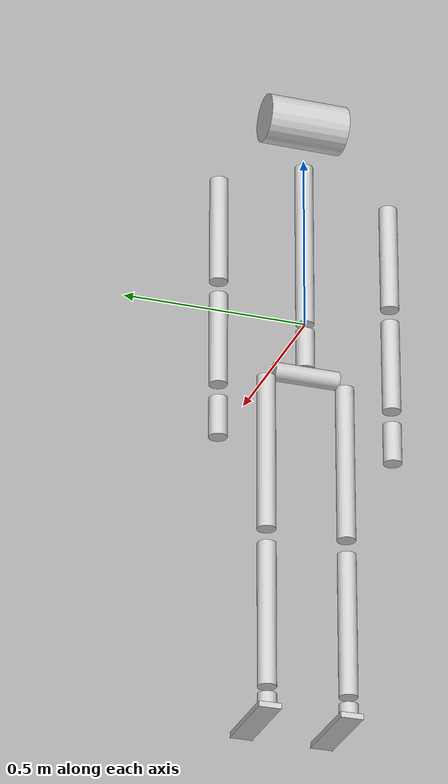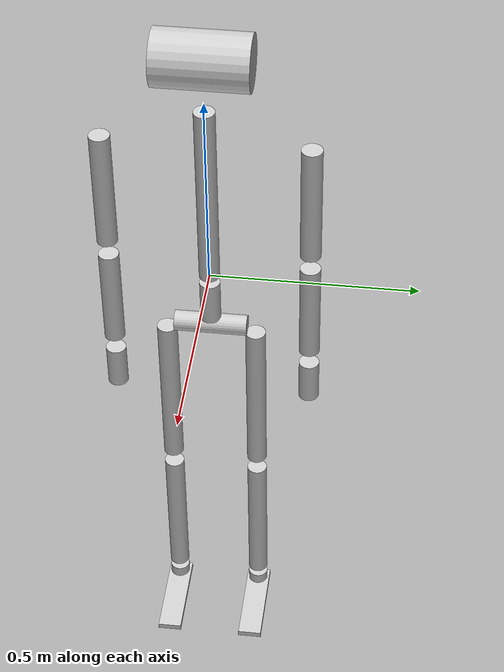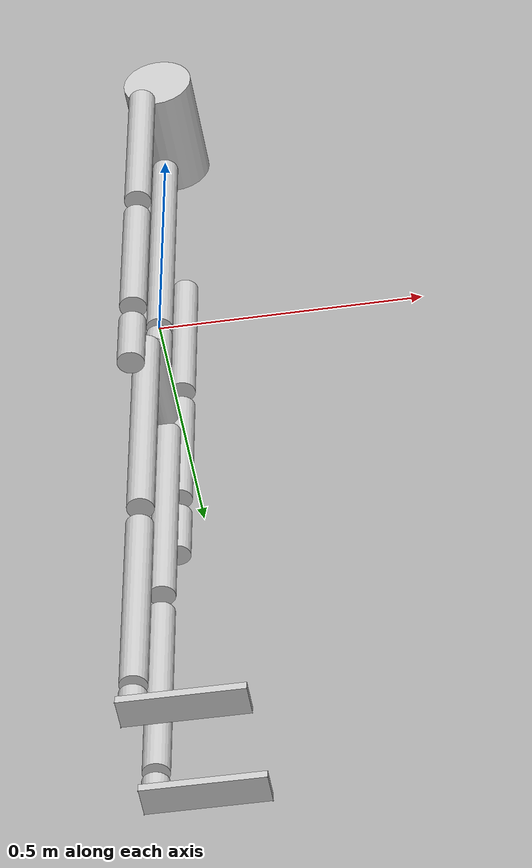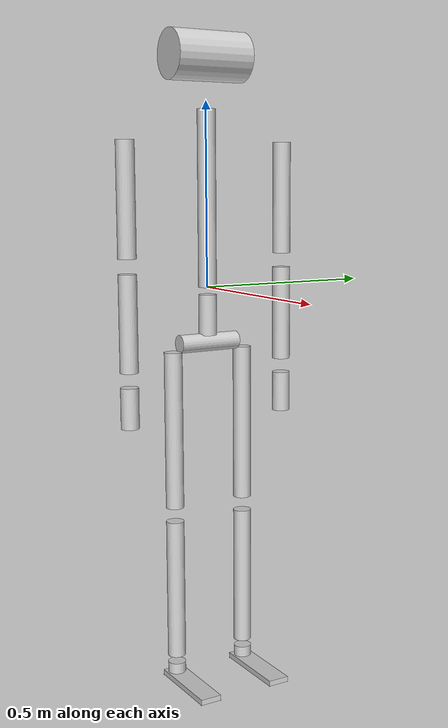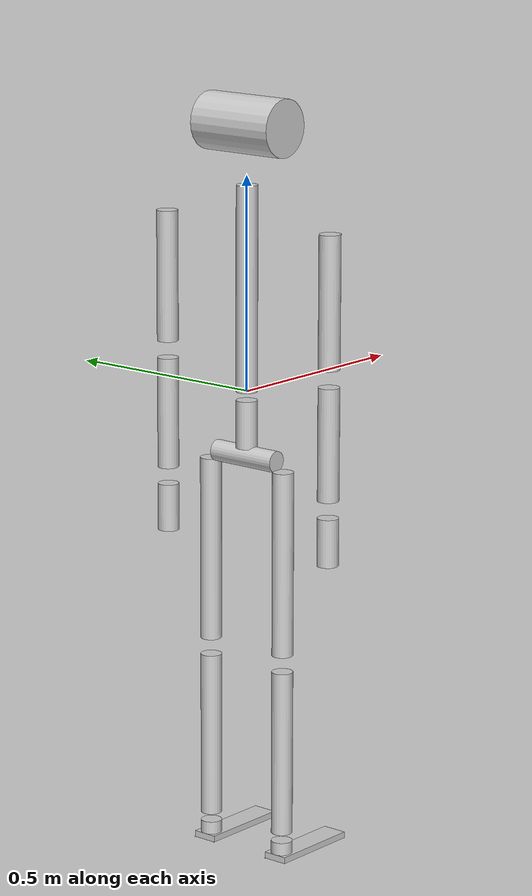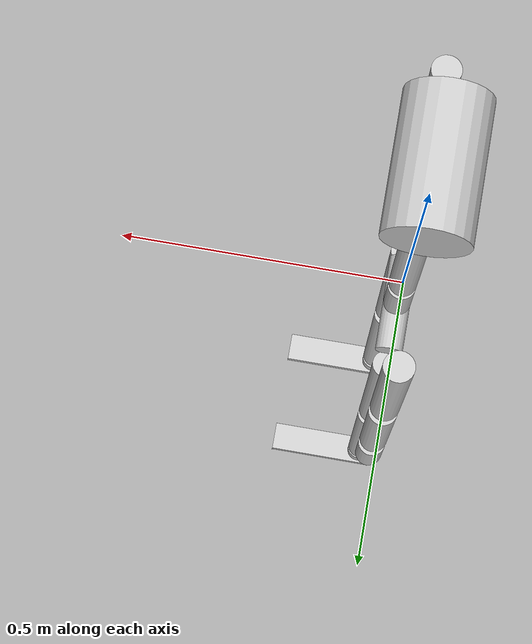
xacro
<?xml version="1.0"?>
<robot xmlns:sensor="http://playerstage.sourceforge.net/gazebo/xmlschema/#sensor"
       xmlns:controller="http://playerstage.sourceforge.net/gazebo/xmlschema/#controller"
       xmlns:interface="http://playerstage.sourceforge.net/gazebo/xmlschema/#interface"
       name="atlas">

  <include filename="$(find atlas_description)/urdf/atlas_properties.xacro" />
  <include filename="$(find atlas_description)/urdf/atlas_visualsandcollision.xacro" />
  <include filename="$(find atlas_description)/urdf/atlas_structure.urdf.xacro" />
 <include filename="$(find atlas_description)/urdf/atlas_controllers_pre_fuerte.xacro" />

</robot>

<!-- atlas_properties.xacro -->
<!--
    A simple visualization of the Atlas's kinematic structure as cylinders
-->
<robot xmlns:xacro="http://ros.org/wiki/xacro">

<xacro:property name="height" value="1.78562" />

<!-- visual properties (only affects visualization) -->
<xacro:property name="cylinder_radius" value="0.025"/>
 <xacro:property name="buffer" value="0.04"/>  <!-- shows a gap between the links -->

<!-- masses (kg) -->
	<!-- mass of cables,skin,fluid etc. -->
<xacro:property name="mass_misc" value="28.4" />
	<!-- redistribyte misc mass equally across legs, arms and torso-->
<xacro:property name="mass_misc_div_3" value="9.467" />

<xacro:property name="mass_pelvis_legs" value="30.7" />
<xacro:property name="mass_torso_back" value= "9.8" />
<xacro:property name="mass_arms_hands" value= "10.2" />
<xacro:property name="mass_head_neck" value="1.8" />
<xacro:property name="mass_power_plant" value="22.0" />
<xacro:property name="mass_total" value="102.9" />
<xacro:property name="mass_pelvis" value="5.7" />
<xacro:property name="mass_foot" value="2.0"/> <!-- made up a value for the foot mass -->
<xacro:property name="mass_wrist" value="2.0"/> <!-- made up a value for the foot mass -->

<!-- proportions -->
<xacro:property name="l_neck_head" value="0.134" />
<xacro:property name="l_head" value="0.124" />
<xacro:property name="l_neck" value="0.01" />
<xacro:property name="l_torso" value="0.268" />
<xacro:property name="l_upper_arm" value="0.195" />
<xacro:property name="l_lower_arm" value="0.170" />
<xacro:property name="l_hand" value="0.0854" />
<xacro:property name="l_thigh" value="0.268" />
<xacro:property name="l_shin" value="0.244 " />
<xacro:property name="l_ankle" value="0.0243" />
<xacro:property name="l_foot" value="0.0976" />
<xacro:property name="l_pelvis" value="0.0854" />

<!-- guessing the width of stuff -->
<xacro:property name="w_head" value="0.075" />
<xacro:property name="w_arm" value="0.05" />
<xacro:property name="w_leg" value="0.06" />
<xacro:property name="w_pelvis" value="0.122" />
<xacro:property name="w_foot" value="0.06" />

<!-- offsets (meters)  -->
<xacro:property name="o_back_shoulder_y" value="0.135" />
<xacro:property name="o_back_shoulder_z" value="0.232" />
<xacro:property name="o_back_hip_y" value="0.061" />
<xacro:property name="o_back_hip_z" value="0.0854" />

<!-- constants -->
<xacro:property name="pi" value="3.1415926535897931"/>
<xacro:property name="pi_2" value="1.5707963267948966"/>
<xacro:property name="pi_180" value="0.01745329251"/>

<!-- Joint limits (radians)  -->
<!-- adduction (min roll): motions towards the midline of the body-->
<!-- abduction (max roll): motions away from the midline of the body-->
<!-- adduction/abduction is analog to roll, rotation about x axis -->
<xacro:property name="hip_adduction_limit" value="-20"/>
<xacro:property name="hip_abduction_limit" value="20"/>
<xacro:property name="back_adduction_limit" value="-40"/>
<xacro:property name="back_abduction_limit" value="40"/>
<xacro:property name="shoulder_adduction_limit" value="0"/>
<xacro:property name="shoulder_abduction_limit" value="115"/>
<xacro:property name="wrist_adduction_limit" value="-30"/>
<xacro:property name="wrist_abduction_limit" value="60"/>

<!-- Flexion (min pitch): decreases angle between two parts -->
<!-- Extension (min pitch): increases angle between two parts -->
<!-- Flexion/Extension is analog to pitch, rotation about y axis -->
<xacro:property name="hip_flexion_limit" value="-100"/>
<xacro:property name="hip_extension_limit" value="20"/>
<xacro:property name="knee_flexion_limit" value="0"/>
<xacro:property name="knee_extension_limit" value="135"/>
<xacro:property name="ankle_flexion_limit" value="-40"/>
<xacro:property name="ankle_extension_limit" value="40"/>

<xacro:property name="back_flexion_limit" value="-35"/>
<xacro:property name="back_extension_limit" value="25"/>
<xacro:property name="neck_flexion_limit" value="-45"/>
<xacro:property name="neck_extension_limit" value="45"/>
<!-- The Boston Dynamics slide says flexion is -90 and extension is 50. But the other way makes more sense -->
<xacro:property name="shoulder_flexion_limit" value="-90"/>
<xacro:property name="shoulder_extension_limit" value="50"/>
<xacro:property name="elbow_flexion_limit" value="-135"/>
<xacro:property name="elbow_extension_limit" value="0"/>

<!-- Internal/External rotation, (analog to yaw). e.g; internal rotation on hip causes the toe to point towards the mid point of the body -->
<xacro:property name="hip_int_rotation_limit" value="-10"/>
<xacro:property name="hip_ext_rotation_limit" value="70"/>
<xacro:property name="back_int_rotation_limit" value="-45"/>
<xacro:property name="back_ext_rotation_limit" value="45"/>
<xacro:property name="neck_int_rotation_limit" value="-90"/>
<xacro:property name="neck_ext_rotation_limit" value="90"/>
<xacro:property name="shoulder_int_rotation_limit" value="-40"/>
<xacro:property name="shoulder_ext_rotation_limit" value="100"/>
<xacro:property name="wrist_int_rotation_limit" value="-85"/>
<xacro:property name="wrist_ext_rotation_limit" value="85"/>

<!-- Torque Limits -->
<xacro:property name="hip_adduction_abduction_torque_limit" value="180"/>
<xacro:property name="hip_flexion_extension_torque_limit" value="260"/>
<xacro:property name="hip_int_ext_rotation_torque_limit" value="110"/>
<xacro:property name="knee_flexion_extension_torque_limit" value="220"/>
<xacro:property name="ankle_flexion_extension_torque_limit" value="220"/>
<xacro:property name="back_adduction_abduction_torque_limit" value="100"/>
<xacro:property name="back_flexion_extension_torque_limit" value="180"/>
<xacro:property name="back_int_ext_rotation_torque_limit" value="110"/>
<xacro:property name="neck_flexion_extension_torque_limit" value="25"/>
<xacro:property name="neck_int_ext_rotation_torque_limit" value="54"/>
<xacro:property name="shoulder_adduction_abduction_torque_limit" value="110"/>
<xacro:property name="shoulder_flexion_extension_torque_limit" value="110"/>
<xacro:property name="shoulder_int_ext_rotation_torque_limit" value="80"/>
<xacro:property name="elbow_flexion_extension_torque_limit" value="100"/>
<xacro:property name="wrist_adduction_abduction_torque_limit" value="30"/>
<xacro:property name="wrist_int_ext_rotation_torque_limit" value="15"/>

<!-- Velocity Limit -->
<xacro:property name="joint_velocity_limit" value="3"/>

<!-- Damping and friction in joints -->
<!-- Maybe we need one for each type of joint -->
<xacro:property name="joint_damping" value="1"/>
<xacro:property name="joint_friction" value="10"/>

<!-- Macros for inertial properties of simple geometries -->

 <xacro:macro name="insert_inertial_cylinder" params="mass r l">
      <inertial>
         <mass value="${mass}" />
          <inertia ixx="${(mass/12)*((3*r*r) + (l*l))}" ixy="0.0" ixz="0.0"
                   iyy="${(mass/12)*((3*r*r) + (l*l))}" iyz="0.0"
                   izz="${(mass/2)*(r*r)}" />
      </inertial>
</xacro:macro>

 <xacro:macro name="insert_inertial_cuboid" params="mass l_x l_y l_z">
      <inertial>
         <mass value="${mass}" />
          <inertia ixx="${(mass/12)*((l_y*l_y) + (l_z*l_z))}" ixy="0.0" ixz="0.0"
                   iyy="${(mass/12)*((l_x*l_x) + (l_z*l_z))}" iyz="0.0"
                   izz="${(mass/12)*((l_x*l_x) + (l_y*l_y))}" />
      </inertial>
</xacro:macro>

 <xacro:macro name="insert_small_inertial"  params="">
    <inertial>
      <origin xyz="0 0 0" rpy="0 0 0"/>
      <mass value="0.01"/>
      <inertia ixx="0.0001"  ixy="0.0"  ixz="0.0" iyy="0.0001" iyz="0.0" izz="0.0001" />
    </inertial>
</xacro:macro>

 <xacro:macro name="insert_zero_inertial"  params="">
  <!-- Gazebo does not like zero inertial properties (Use small inertial instead) -->
    <inertial>
      <origin xyz="0 0 0" rpy="0 0 0"/>
      <mass value="0.00"/>
      <inertia ixx="0.0000"  ixy="0.0"  ixz="0.0" iyy="0.0000" iyz="0.0" izz="0.0000" />
    </inertial>
</xacro:macro>

 <xacro:macro name="insert_inertial_cylinder2" params="mass mass4inertiatensor r l">
   <!-- Useful when specifying inertia of multiDOF joints if they are subdivided into individual links, shoulder yaw,pitch,roll-->
      <inertial>
         <mass value="${mass}" />
          <inertia ixx="${(mass4inertiatensor/12)*((3*r*r) + (l*l))}" ixy="0.0" ixz="0.0"
                   iyy="${(mass4inertiatensor/12)*((3*r*r) + (l*l))}" iyz="0.0"
                   izz="${(mass4inertiatensor/2)*(r*r)}" />
        </inertial>
</xacro:macro>

</robot>

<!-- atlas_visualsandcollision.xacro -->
<!--
    A simple visualization of the Atlas's kinematic structure as cylinders
-->
<robot xmlns:xacro="http://ros.org/wiki/xacro">
  <material name="LightGrey">
    <color rgba="0.8 0.8 0.8 1.0"/>
  </material>
  <material name="Grey">
      <color rgba="0.6 0.6 0.6 1.0"/>
  </material>
  <material name="DarkGrey">
      <color rgba="0.3 0.3 0.3 1.0"/>
  </material>
  <material name="Black">
      <color rgba="0.1 0.1 0.1 1.0"/>
  </material>

    <xacro:macro name="insert_visualization_torso" params="">
        <visual>
            <origin xyz="0.0 0.0 ${(l_torso/2)*height}" rpy="0 0 0"/>
            <geometry>
                <cylinder radius="${cylinder_radius}" length="${l_torso*height}"/>
            </geometry>
            <material name="LightGrey"/>
        </visual>
       <collision>
              <origin xyz="0.0 0.0 ${(l_torso/2)*height}" rpy="0 0 0"/>
            <geometry>
                <box size=" ${0.1*height} ${0.28*height} ${0.268*height}"/>
            </geometry>
        </collision>
    </xacro:macro>

    <xacro:macro name="insert_visualization_head" params="">
        <visual>
            <origin xyz="0 0 ${(l_neck_head/2 + l_neck)*height}" rpy="${pi_2} 0 0"/>
            <geometry>
		<cylinder radius="${(w_head/2)*height}" length="${l_head*height}"/>
            </geometry>
            <material name="LightGrey"/>
        </visual>
       <collision>
           <origin xyz="0 0 ${(l_neck_head/2 + l_neck)*height}" rpy="1.57 0 0"/>
            <geometry>
                <cylinder radius="${(w_head/2)*height}" length="${l_neck_head*height}"/>
            </geometry>
        </collision>
    </xacro:macro>

    <xacro:macro name="insert_visualization_upper_arm" params="side">
        <visual>
            <origin xyz="0 0 -${(l_upper_arm/2)*height}" rpy="0 0 0"/>
            <geometry>
                <cylinder radius="${cylinder_radius}" length="${l_upper_arm*height-buffer}"/>
            </geometry>
            <material name="LightGrey"/>
        </visual>
       <collision>
            <origin xyz="0 0 -${(l_upper_arm/2)*height}" rpy="0 0 0"/>
            <geometry>
                <cylinder radius="${cylinder_radius}" length="${l_upper_arm*height}"/>
            </geometry>
        </collision>
    </xacro:macro>

    <xacro:macro name="insert_visualization_lower_arm" params="side">
        <visual>
            <origin xyz="0 0 -${(l_lower_arm/2)*height}"  rpy="0 0 0"/>
            <geometry>
               <cylinder radius="${cylinder_radius}" length="${l_lower_arm*height-buffer}"/>
            </geometry>
            <material name="LightGrey"/>
        </visual>
       <collision>
            <origin xyz="0 0 -${(l_lower_arm/2)*height}"  rpy="0 0 0"/>
            <geometry>
                <cylinder radius="${cylinder_radius}" length="${l_lower_arm*height}"/>
            </geometry>
        </collision>
    </xacro:macro>

    <xacro:macro name="insert_visualization_hand" params="side">
 	<visual>
            <origin xyz="0 0 -${(l_hand/2)*height}"  rpy="0 0 0"/>
            <geometry>
               <cylinder radius="${cylinder_radius}" length="${l_hand*height-buffer}"/>
            </geometry>
            <material name="LightGrey"/>
        </visual>
       <collision>
             <origin xyz="0 0 -${(l_hand/2)*height}"  rpy="0 0 0"/>
            <geometry>
                <cylinder radius="${cylinder_radius}" length="${l_hand*height}"/>
            </geometry>
        </collision>
    </xacro:macro>

    <xacro:macro name="insert_visualization_pelvis1" params="">
        <visual>
            <origin xyz="0 0 -${(l_pelvis/2)*height}" rpy="0 0 0"/>
            <geometry>
               <cylinder radius="${cylinder_radius}" length="${l_pelvis*height-buffer}"/>
            </geometry>
            <material name="LightGrey"/>
        </visual>
       <collision>
            <origin xyz="0 0 -${(l_pelvis/2)*height}" rpy="0 0 0"/>
            <geometry>
                <cylinder radius="${cylinder_radius}" length="${l_pelvis*height}"/>
            </geometry>
        </collision>
    </xacro:macro>

    <xacro:macro name="insert_visualization_pelvis2" params="">
        <visual>
            <origin xyz="0 0 0" rpy="${pi_2} 0 0"/>
            <geometry>
               <cylinder radius="${cylinder_radius}" length="${w_pelvis*height-buffer}"/>
            </geometry>
            <material name="LightGrey"/>
        </visual>
       <collision>
            <origin xyz="0 0 0" rpy="${pi_2} 0 0"/>
            <geometry>
                <cylinder radius="${cylinder_radius}" length="${w_pelvis*height}"/>
            </geometry>
        </collision>
    </xacro:macro>

    <xacro:macro name="insert_visualization_thigh" params="side">
        <visual>
            <origin xyz="0.0 0.0 -${(l_thigh/2)*height}" rpy="0 0 0"/>
            <geometry>
                <cylinder radius="${cylinder_radius}" length="${l_thigh*height-buffer}"/>
            </geometry>
            <material name="LightGrey"/>
        </visual>
       <collision>
              <origin xyz="0.0 0.0 -${(l_thigh/2)*height}" rpy="0 0 0"/>
            <geometry>
                <cylinder radius="${cylinder_radius}" length="${l_thigh*height}"/>
            </geometry>
        </collision>
    </xacro:macro>

    <xacro:macro name="insert_visualization_shin" params="side">
        <visual>
            <origin xyz="0 0 -${(l_shin/2)*height}" rpy="0 0 0"/>
            <geometry>
               <cylinder radius="${cylinder_radius}" length="${l_shin*height-buffer}"/>
            </geometry>
            <material name="LightGrey"/>
        </visual>
       <collision>
            <origin xyz="0 0 -${(l_shin/2)*height}" rpy="0 0 0"/>
            <geometry>
                <cylinder radius="${cylinder_radius}" length="${l_shin*height}"/>
            </geometry>
        </collision>
    </xacro:macro>

    <xacro:macro name="insert_visualization_ankle" params="side">
        <visual>
            <origin xyz="0 0 -${(l_ankle/2)*height}" rpy="0 0 0"/>
            <geometry>
               <cylinder radius="${cylinder_radius}" length="${l_ankle*height}"/>
            </geometry>
            <material name="LightGrey"/>
        </visual>
       <collision>
            <origin xyz="0 0 -${(l_ankle/2)*height}" rpy="0 0 0"/>
            <geometry>
                <cylinder radius="${cylinder_radius}" length="${l_ankle*height}"/>
            </geometry>
        </collision>
    </xacro:macro>

    <xacro:macro name="insert_visualization_foot" params="side">
        <visual>
            <origin xyz="${(l_foot/2)*height} 0 0.0075" rpy="0 0 0"/>
            <geometry>
                <box size="${l_foot*height+0.05} ${w_foot} 0.015"/>
            </geometry>
            <material name="LightGrey"/>
        </visual>
       <collision>
           <origin xyz="${(l_foot/2)*height} 0 0.0075" rpy="0 0 0"/>
            <geometry>
                <box size="${l_foot*height+0.05} ${w_foot} 0.015"/>
            </geometry>
        </collision>
    </xacro:macro>

    <xacro:macro name="insert_visualization_foot_contact_point" params="side">
        <visual>
            <origin xyz="0 0 0" rpy="0 0 0"/>
            <geometry>
                <sphere radius="0.001"/>
            </geometry>
            <material name="LightGrey"/>
        </visual>
       <collision>
           <origin xyz="0 0 0" rpy="0 0 0"/>
            <geometry>
                <sphere radius="0.0001"/> <!-- ~=point contact -->
            </geometry>
        </collision>
    </xacro:macro>

</robot>

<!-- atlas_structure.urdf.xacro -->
<robot xmlns:xacro="http://ros.org/wiki/xacro">

<!-- dummy first link, directly connects with back joint -->
  <link name="base_link">
    <xacro:insert_small_inertial />
  </link>

  <link name="Back">
   <xacro:insert_inertial_cylinder mass="${0.1*mass_torso_back}" r="${w_pelvis*height}" l="${0.1*height}"/>
  </link>

  <link name="Pelvis-link1">
   <xacro:insert_inertial_cuboid mass="${0.5*mass_pelvis}" l_x="${0.1*height}" l_y="${w_pelvis*height}" l_z="${l_pelvis*height}"/>
   <xacro:insert_visualization_pelvis1/>
  </link>

  <link name="Pelvis-link2">
   <xacro:insert_inertial_cuboid mass="${0.5*mass_pelvis}" l_x="${0.1*height}" l_y="${l_pelvis*height}" l_z="${w_pelvis*height}"/>
   <xacro:insert_visualization_pelvis2/>
  </link>

  <link name="BackYaw_link">
   <xacro:insert_inertial_cylinder mass="${0.1*mass_torso_back}" r="${o_back_shoulder_y*height}" l="${0.1*height}"/>
  </link>

  <link name="BackPitch_link">
  <xacro:insert_inertial_cuboid mass="${0.1*mass_torso_back}" l_x="${0.1*height}" l_y="${0.28*height}" l_z="${0.268*height}"/>
  </link>

  <link name="BackRoll_link">
  <xacro:insert_inertial_cuboid mass="${0.1*mass_torso_back}" l_x="${0.1*height}" l_y="${0.28*height}" l_z="${0.268*height}"/>
  </link>

 <link name="Torso" >
   <!-- assuming the rotational inertia of the torso is of a cuboid -->
  <xacro:insert_inertial_cuboid mass="${0.6*mass_torso_back+mass_misc_div_3}" l_x="${0.1*height}" l_y="${0.28*height}" l_z="${0.268*height}"/>
   <xacro:insert_visualization_torso/>
  </link>

  <link name="NeckYaw_link">
  <xacro:insert_inertial_cylinder mass="${0.5*mass_head_neck}" r="${(w_head/2)*height}" l="${l_neck_head*height}"/>
  </link>

  <link name="NeckPitch_link">
  <xacro:insert_inertial_cylinder mass="${0.5*mass_head_neck}" r="${(w_head/2)*height}" l="${l_neck_head*height}"/>
  <xacro:insert_visualization_head/>
  </link>

  <!-- Arms, 2/3 of the weight is in the shoulders and upper arm. 1/3 is in the lower arm -->
  <xacro:macro name="arm_links" params="side reflect">

  <link name = "${side}ShoulderYaw_link">
  <xacro:insert_inertial_cylinder mass="${((mass_arms_hands+mass_misc_div_3)/9)}"
 r="${(w_arm/2)*height}" l="${l_upper_arm*height}"/>
  </link>
  <link name = "${side}ShoulderPitch_link">
  <xacro:insert_inertial_cylinder mass="${((mass_arms_hands+mass_misc_div_3)/9)}"  r="${(w_arm/2)*height}" l="${l_upper_arm*height}"/>
   </link>
  <link name = "${side}ShoulderRoll_link">
  <xacro:insert_inertial_cylinder mass="${((mass_arms_hands+mass_misc_div_3)/9)}" r="${(w_arm/2)*height}" l="${l_upper_arm*height}"/>
    <xacro:insert_visualization_upper_arm side="${side}"/>
  </link>

  <link name = "${side}ElbowPitch_link">
  <xacro:insert_inertial_cylinder mass="${((mass_arms_hands+mass_misc_div_3)/6)}" r="${(w_arm/2)*height}" l="${l_lower_arm*height}"/>
    <xacro:insert_visualization_lower_arm side="${side}"/>
  </link>

  <link name = "${side}WristYaw_link">
    <xacro:insert_inertial_cylinder2 mass="${mass_wrist*0.5}" mass4inertiatensor="${mass_wrist}" r="${(w_arm/2)*height}" l="${l_hand*height}"/>
  </link>

  <link name = "${side}WristRoll_link">
   <xacro:insert_inertial_cylinder2 mass="${mass_wrist*0.5}" mass4inertiatensor="${mass_wrist}" r="${(w_arm/2)*height}" l="${l_hand*height}"/>
   <xacro:insert_visualization_hand side="${side}"/>
  </link>

  </xacro:macro>

  <xacro:arm_links side="L" reflect="-1"/>
  <xacro:arm_links side="R" reflect="1"/>

<!-- Legs, 2/3 of the weight is in the hips and thigh and other 1/3 is in the lower leg  -->
<xacro:macro name="leg_links" params="side reflect">
  <link name="${side}HipYaw_link" >
   <xacro:insert_inertial_cylinder mass="${((mass_pelvis_legs-(2*mass_foot)-mass_pelvis+mass_misc_div_3)/9)}" r="${(w_leg/2)*height}" l="${l_thigh*height}"/>
  </link>

  <link name="${side}HipPitch_link">
   <xacro:insert_inertial_cylinder mass="${((mass_pelvis_legs-(2*mass_foot)-mass_pelvis+mass_misc_div_3)/9)}" r="${(w_leg/2)*height}" l="${l_thigh*height}"/>
  </link>

  <link name="${side}HipRoll_link">
   <xacro:insert_inertial_cylinder mass="${((mass_pelvis_legs-(2*mass_foot)-mass_pelvis+mass_misc_div_3)/9)}" r="${(w_leg/2)*height}" l="${l_thigh*height}"/>
    <xacro:insert_visualization_thigh side="${side}"/>
  </link>

  <link name="${side}KneePitch_link">
     <xacro:insert_inertial_cylinder mass="${((mass_pelvis_legs-(2*mass_foot)-mass_pelvis+mass_misc_div_3)/6)}" r="${(w_leg/2)*height}" l="${l_shin*height}"/>
    <xacro:insert_visualization_shin side="${side}"/>
  </link>

  <link name="${side}AnklePitch_link">
    <xacro:insert_inertial_cylinder mass="${1}" r="${cylinder_radius}" l="${l_ankle*height}"/>
    <xacro:insert_visualization_ankle side="${side}"/>
  </link>

  <link name="${side}Ankle">
    <xacro:insert_inertial_cylinder mass="${1}" r="${cylinder_radius}" l="${l_ankle*height}"/>
  </link>

  <link name="${side}Foot">
    <xacro:insert_inertial_cuboid mass="${mass_foot}" l_x="${l_foot*height}" l_y="0.06" l_z="0.015"/>
    <xacro:insert_visualization_foot side="${side}"/>
  </link>

  <link name="${side}FootToeIn_link" drakeIgnore="True">
    <xacro:insert_small_inertial />
    <xacro:insert_visualization_foot_contact_point side="${side}"/>
  </link>

  <link name="${side}FootToeOut_link" drakeIgnore="True">
    <xacro:insert_small_inertial />
    <xacro:insert_visualization_foot_contact_point side="${side}"/>
  </link>

  <link name="${side}FootHeelIn_link" drakeIgnore="True">
    <xacro:insert_small_inertial />
    <xacro:insert_visualization_foot_contact_point side="${side}"/>
  </link>

  <link name="${side}FootHeelOut_link" drakeIgnore="True">
    <xacro:insert_small_inertial />
    <xacro:insert_visualization_foot_contact_point side="${side}"/>
  </link>

 </xacro:macro>

  <xacro:leg_links side="L" reflect="-1"/>
  <xacro:leg_links side="R" reflect="1"/>

<!--   Joints following below -->

<xacro:macro name="joint_trans" params="joint_name">
  <transmission type="SimpleTransmission" name="${joint_name}_trans">
    <actuator name="${joint_name}Torque" />
    <joint name="${joint_name}" />
    <mechanicalReduction>1</mechanicalReduction>
  </transmission>
</xacro:macro>

  <joint name="base_joint" type="fixed">
    <child link="Back"/>
    <parent link="base_link"/>
    <origin xyz="0 0 0" rpy="0 0 0" />
  </joint>

  <joint name="BackYaw" type="revolute">
    <parent link="Back"/>
    <child link="BackYaw_link"/>
    <origin xyz="0 0 0.0" rpy="0 0 0" />
    <axis xyz="0 0 1" />
    <limit velocity="${joint_velocity_limit}" effort="${back_int_ext_rotation_torque_limit}" lower="${back_int_rotation_limit*pi_180}" upper="${back_ext_rotation_limit*pi_180}" />
     <dynamics damping="${joint_damping}" friction = "${joint_friction}"/>
  </joint>
  <xacro:joint_trans joint_name="BackYaw"/>

  <joint name="BackPitch" type="revolute">
    <parent link="BackYaw_link"/>
    <child link="BackPitch_link"/>
    <origin xyz="0 0 0" rpy="0 0 0" />
    <axis xyz="0 1 0" />
    <limit velocity="${joint_velocity_limit}" effort="${back_flexion_extension_torque_limit}" lower="${back_flexion_limit*pi_180}" upper="${back_extension_limit*pi_180}" />
     <dynamics damping="${joint_damping}" friction = "${joint_friction}"/>
  </joint>
  <xacro:joint_trans joint_name="BackPitch"/>

  <joint name="BackRoll" type="revolute">
    <parent link="BackPitch_link"/>
    <child link="BackRoll_link"/>
    <origin xyz="0 0 0" rpy="0 0 0" />
    <axis xyz="1 0 0" />
    <limit velocity="${joint_velocity_limit}" effort="${back_adduction_abduction_torque_limit}" lower="${back_adduction_limit*pi_180}" upper="${back_abduction_limit*pi_180}" />
     <dynamics damping="${joint_damping}" friction = "${joint_friction}"/>
  </joint>
  <xacro:joint_trans joint_name="BackRoll"/>

  <joint name="BackRoll_Torso_joint" type="fixed">
    <child link="Torso"/>
    <parent link="BackRoll_link"/>
    <origin xyz="0 0 0" rpy="0 0 0" />
  </joint>

<!-- Neck joints -->

  <joint name="NeckYaw" type="revolute">
    <parent link="Torso"/>
    <child link="NeckYaw_link"/>
    <origin xyz="0 0 ${(l_torso)*height}" rpy="0 0 0" />
    <axis xyz="0 0 1" />
    <limit velocity="${joint_velocity_limit}" effort="${neck_int_ext_rotation_torque_limit}" lower="${neck_int_rotation_limit*pi_180}" upper="${neck_ext_rotation_limit*pi_180}" />
     <dynamics damping="${joint_damping}" friction = "${joint_friction}"/>
  </joint>
  <xacro:joint_trans joint_name="NeckYaw"/>

  <joint name="NeckPitch" type="revolute">
    <parent link="NeckYaw_link"/>
    <child link="NeckPitch_link"/>
    <origin xyz="0 0 0" rpy="0 0 0" />
    <axis xyz="0 1 0" />
    <limit velocity="${joint_velocity_limit}" effort="${neck_flexion_extension_torque_limit}" lower="${neck_flexion_limit*pi_180}" upper="${neck_extension_limit*pi_180}"/>
     <dynamics damping="${joint_damping}" friction = "${joint_friction}"/>
  </joint>
  <xacro:joint_trans joint_name="NeckPitch"/>

<!-- Arm joints -->
  <joint name="LShoulderRoll" type="revolute">
    <parent link="LShoulderPitch_link"/>
    <child link="LShoulderRoll_link"/>
    <origin xyz="0 0 0" rpy="0 0 0" />
    <axis xyz="1 0 0"/>
<limit velocity="${joint_velocity_limit}" effort="${shoulder_adduction_abduction_torque_limit}" lower="${shoulder_adduction_limit*pi_180}" upper="${shoulder_abduction_limit*pi_180}" />
     <dynamics damping="${joint_damping}" friction = "${joint_friction}"/>
  </joint>
  <xacro:joint_trans joint_name="LShoulderRoll"/>

  <joint name="RShoulderRoll" type="revolute">
    <parent link="RShoulderPitch_link"/>
    <child link="RShoulderRoll_link"/>
    <origin xyz="0 0 0" rpy="0 0 0" />
    <axis xyz="1 0 0"/>
<limit velocity="${joint_velocity_limit}" effort="${shoulder_adduction_abduction_torque_limit}" lower="-${shoulder_abduction_limit*pi_180}" upper="-${shoulder_adduction_limit*pi_180}" />
     <dynamics damping="${joint_damping}" friction = "${joint_friction}"/>
  </joint>
  <xacro:joint_trans joint_name="RShoulderRoll"/>

 <xacro:macro name="arm_joints" params="side reflect">
  <joint name="${side}ShoulderYaw" type="revolute">
    <parent link="BackRoll_link"/>
    <child link="${side}ShoulderYaw_link"/>
    <origin xyz="0 ${reflect*-(o_back_shoulder_y*height)} ${o_back_shoulder_z*height}" rpy="0 0 0"/>
    <axis xyz="0 0 1"/>
    <limit velocity="${joint_velocity_limit}" effort="${shoulder_int_ext_rotation_torque_limit}" lower="${shoulder_int_rotation_limit*pi_180}" upper="${shoulder_ext_rotation_limit*pi_180}" />
     <dynamics damping="${joint_damping}" friction = "${joint_friction}"/>
  </joint>
  <xacro:joint_trans joint_name="${side}ShoulderYaw"/>

  <joint name="${side}ShoulderPitch" type="revolute">
    <parent link="${side}ShoulderYaw_link"/>
    <child link="${side}ShoulderPitch_link"/>
    <origin xyz="0 0 0" rpy="0 0 0" />
    <axis xyz="0 1 0"/>
   <limit velocity="${joint_velocity_limit}" effort="${shoulder_flexion_extension_torque_limit}" lower="${shoulder_flexion_limit*pi_180}" upper="${shoulder_extension_limit*pi_180}" />
     <dynamics damping="${joint_damping}" friction = "${joint_friction}"/>
  </joint>
  <xacro:joint_trans joint_name="${side}ShoulderPitch"/>

  <joint name="${side}ElbowPitch" type="revolute">
    <parent link="${side}ShoulderRoll_link"/>
    <child link="${side}ElbowPitch_link"/>
    <origin xyz="0 0 -${(l_upper_arm)*height}" rpy="0 0 0"/>
    <axis xyz="0 1 0"/>
    <limit velocity="${joint_velocity_limit}" effort="${elbow_flexion_extension_torque_limit}" lower="${elbow_flexion_limit*pi_180}" upper="${elbow_extension_limit*pi_180}"/>
     <dynamics damping="${joint_damping}" friction = "${joint_friction}"/>
  </joint>
  <xacro:joint_trans joint_name="${side}ElbowPitch"/>

  <joint name="${side}WristYaw" type="revolute">
    <parent link="${side}ElbowPitch_link"/>
    <child link="${side}WristYaw_link"/>
    <origin xyz="0 0 -${(l_lower_arm)*height}" rpy="0 0 0"/>
    <axis xyz="0 0 1"/>
    <limit velocity="${joint_velocity_limit}" effort="${wrist_int_ext_rotation_torque_limit}" lower="${wrist_int_rotation_limit*pi_180}" upper="${wrist_ext_rotation_limit*pi_180}" />
     <dynamics damping="${joint_damping}" friction = "${joint_friction}"/>
  </joint>
  <xacro:joint_trans joint_name="${side}WristYaw"/>

  </xacro:macro>

  <xacro:arm_joints side="L" reflect="-1"/>
  <xacro:arm_joints side="R" reflect="1"/>

  <joint name="LWristRoll" type="revolute">
    <parent link="LWristYaw_link"/>
    <child link="LWristRoll_link"/>
    <origin xyz="0 0 0" rpy="0 0 0"/>
    <axis xyz="1 0 0"/>
<limit velocity="${joint_velocity_limit}" effort="${wrist_adduction_abduction_torque_limit}" lower="${wrist_adduction_limit*pi_180}" upper="${wrist_abduction_limit*pi_180}" />
     <dynamics damping="${joint_damping}" friction = "${joint_friction}"/>
  </joint>
  <xacro:joint_trans joint_name="LWristRoll"/>

  <joint name="RWristRoll" type="revolute">
    <parent link="RWristYaw_link"/>
    <child link="RWristRoll_link"/>
    <origin xyz="0 0 0" rpy="0 0 0"/>
    <axis xyz="1 0 0"/>
<limit velocity="${joint_velocity_limit}" effort="${wrist_adduction_abduction_torque_limit}" lower="${-wrist_abduction_limit*pi_180}" upper="${-wrist_adduction_limit*pi_180}" />
     <dynamics damping="${joint_damping}" friction = "${joint_friction}"/>
  </joint>
  <xacro:joint_trans joint_name="RWristRoll"/>

<!-- Pelvis joints -->
 <joint name="Back_Pelvis_Joint" type="fixed">
    <parent link="Back"/>
    <child link="Pelvis-link1"/>
    <origin xyz="0 0 0" rpy="0 0 0" />
  </joint>

 <joint name="Mid_Pelvis_Joint" type="fixed">
    <parent link="Pelvis-link1"/>
    <child link="Pelvis-link2"/>
    <origin xyz="0 0 ${-l_pelvis*height}" rpy="0 0 0" />
  </joint>

<!-- Leg joints -->

 <joint name="LHipYaw" type="revolute">
    <parent link="Pelvis-link2"/>
    <child link="LHipYaw_link"/>
    <origin xyz="0 ${-1*-(o_back_hip_y*height)} 0" rpy="0 0 0"/>
    <axis xyz="0 0 1"/>
  <limit velocity="${joint_velocity_limit}" effort="${hip_int_ext_rotation_torque_limit}" lower="${hip_int_rotation_limit*pi_180}" upper="${hip_ext_rotation_limit*pi_180}" />
     <dynamics damping="${joint_damping}" friction = "${joint_friction}"/>
  </joint>
  <xacro:joint_trans joint_name="LHipYaw"/>

  <joint name="RHipYaw" type="revolute">
    <parent link="Pelvis-link2"/>
    <child link="RHipYaw_link"/>
    <origin xyz="0 ${1*-(o_back_hip_y*height)} 0" rpy="0 0 0"/>
    <axis xyz="0 0 1"/>
  <limit velocity="${joint_velocity_limit}" effort="${hip_int_ext_rotation_torque_limit}" lower="${-hip_ext_rotation_limit*pi_180}" upper="${-hip_int_rotation_limit*pi_180}" />
     <dynamics damping="${joint_damping}" friction = "${joint_friction}"/>
  </joint>
  <xacro:joint_trans joint_name="RHipYaw"/>

<xacro:macro name="leg_joints" params="side reflect">

  <joint name="${side}HipPitch" type="revolute">
    <parent link="${side}HipYaw_link"/>
    <child link="${side}HipPitch_link"/>
    <origin xyz="0 0 0" rpy="0 0 0"/>
    <axis xyz="0 1 0"/>
      <limit velocity="${joint_velocity_limit}" effort="${hip_flexion_extension_torque_limit}" lower="${hip_flexion_limit*pi_180}" upper="${hip_extension_limit*pi_180}" />
     <dynamics damping="${joint_damping}" friction = "${joint_friction}"/>
  </joint>
  <xacro:joint_trans joint_name="${side}HipPitch"/>

  <joint name="${side}HipRoll" type="revolute">
    <parent link="${side}HipPitch_link"/>
    <child link="${side}HipRoll_link"/>
    <origin xyz="0 0 0" rpy="0 0 0"/>
    <axis xyz="1 0 0"/>
    <limit velocity="${joint_velocity_limit}" effort="${hip_adduction_abduction_torque_limit}" lower="${hip_adduction_limit*pi_180}" upper="${hip_abduction_limit*pi_180}" />
     <dynamics damping="${joint_damping}" friction = "${joint_friction}"/>
  </joint>
  <xacro:joint_trans joint_name="${side}HipRoll"/>

  <joint name="${side}KneePitch" type="revolute">
    <parent link="${side}HipRoll_link"/>
    <child link="${side}KneePitch_link"/>
    <origin xyz="0 0 -${(l_thigh)*height}" rpy="0 0 0"/>
    <axis xyz="0 1 0"/>
    <limit velocity="${joint_velocity_limit}" effort="${knee_flexion_extension_torque_limit}" lower="${knee_flexion_limit*pi_180}" upper="${knee_extension_limit*pi_180}"/>
     <dynamics damping="${joint_damping}" friction = "${joint_friction}"/>
  </joint>
  <xacro:joint_trans joint_name="${side}KneePitch"/>

  <joint name="${side}AnklePitch" type="revolute">
    <parent link="${side}KneePitch_link"/>
    <child link="${side}AnklePitch_link"/>
    <origin xyz="0 0 -${(l_shin)*height}" rpy="0 0 0"/>
    <axis xyz="0 1 0"/>
    <limit velocity="${joint_velocity_limit}" effort="${ankle_flexion_extension_torque_limit}" lower="${ankle_flexion_limit*pi_180}" upper="${ankle_extension_limit*pi_180}"/>
     <dynamics damping="${joint_damping}" friction = "${joint_friction}"/>
  </joint>
  <xacro:joint_trans joint_name="${side}AnklePitch"/>

  <joint name="${side}Ankle_joint" type="fixed">
    <parent link="${side}AnklePitch_link" />
    <child link="${side}Ankle" />
    <origin xyz="0 0 0" />
  </joint>

  <joint name="${side}Foot_joint" type="fixed">
    <parent link="${side}AnklePitch_link" />
    <child link="${side}Foot" />
    <origin xyz="0 0 -0.04519" />
  </joint>

  <joint name="${side}FootToeIn_joint" type="fixed" drakeIgnore="True">
    <parent link="${side}AnklePitch_link" />
    <child link="${side}FootToeIn_link" />
    <origin xyz="${l_foot*height+0.025} ${reflect*w_foot/2} -0.04519" />
  </joint>

  <joint name="${side}FootToeOut_joint" type="fixed" drakeIgnore="True">
    <parent link="${side}AnklePitch_link" />
    <child link="${side}FootToeOut_link" />
    <origin xyz="${l_foot*height+0.025} ${-reflect*w_foot/2} -0.04519" />
  </joint>

  <joint name="${side}FootHeelIn_joint" type="fixed" drakeIgnore="True">
    <parent link="${side}AnklePitch_link" />
    <child link="${side}FootHeelIn_link" />
    <origin xyz="-0.025 ${reflect*w_foot/2} -0.04519" />
  </joint>

  <joint name="${side}FootHeelOut_joint" type="fixed" drakeIgnore="True">
    <parent link="${side}AnklePitch_link" />
    <child link="${side}FootHeelOut_link" />
    <origin xyz="-0.025 ${-reflect*w_foot/2} -0.04519" />
  </joint>

</xacro:macro>

  <xacro:leg_joints side="L" reflect="-1"/>
  <xacro:leg_joints side="R" reflect="1"/>

</robot>
